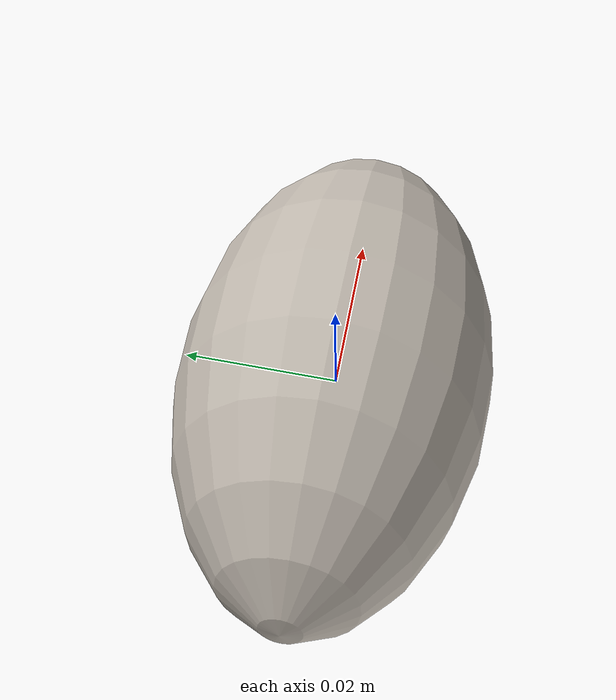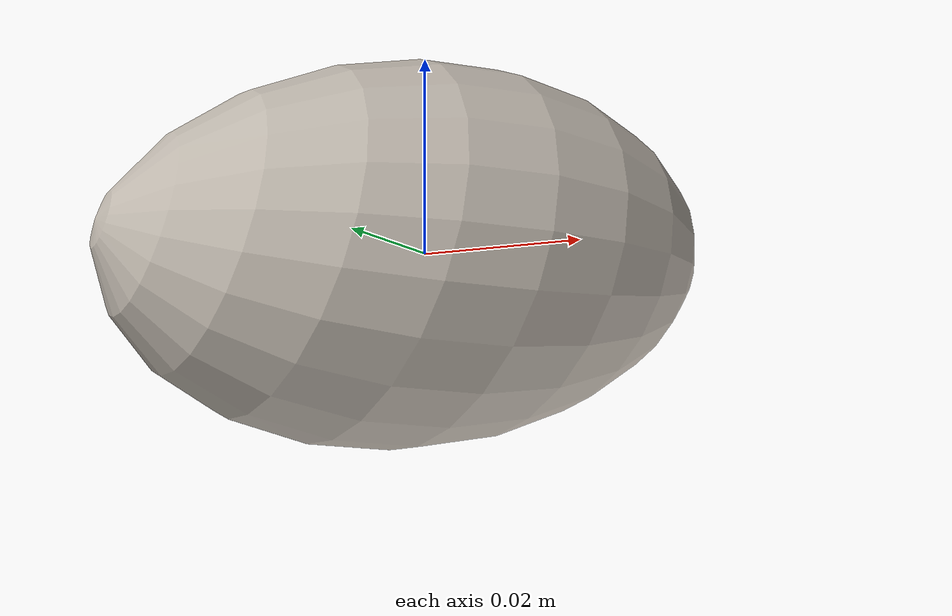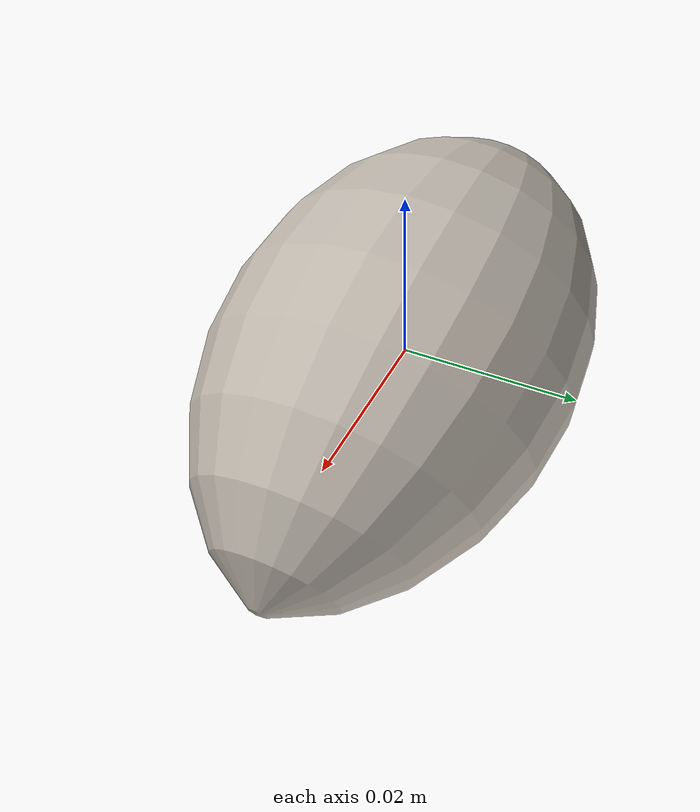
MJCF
<mujoco model="lemon">
  <asset>
    <mesh file="meshes/lemon.msh" name="lemon_mesh" scale="1.5 1 1"/>
    <texture file="../textures/lemon.png" type="2d" name="tex-lemon"/>
    <material name="lemon" reflectance="0.7" texrepeat="60 50" texture="tex-lemon" texuniform="true"/>
  </asset>
  <worldbody>
    <body>
      <body name="object">
        <geom pos="0 0 0" mesh="lemon_mesh" type="mesh" solimp="0.998 0.998 0.001" solref="0.001 1" density="50" friction="0.95 0.3 0.1"  material="lemon" group="0" condim="4"/>
      </body>
      <site rgba="0 0 0 0" size="0.005" pos="0 0 -0.035" name="bottom_site"/>
      <site rgba="0 0 0 0" size="0.005" pos="0 0 0.02" name="top_site"/>
      <site rgba="0 0 0 0" size="0.005" pos="0.0375 0.02 0" name="horizontal_radius_site"/>
    </body>
  </worldbody>
</mujoco>
